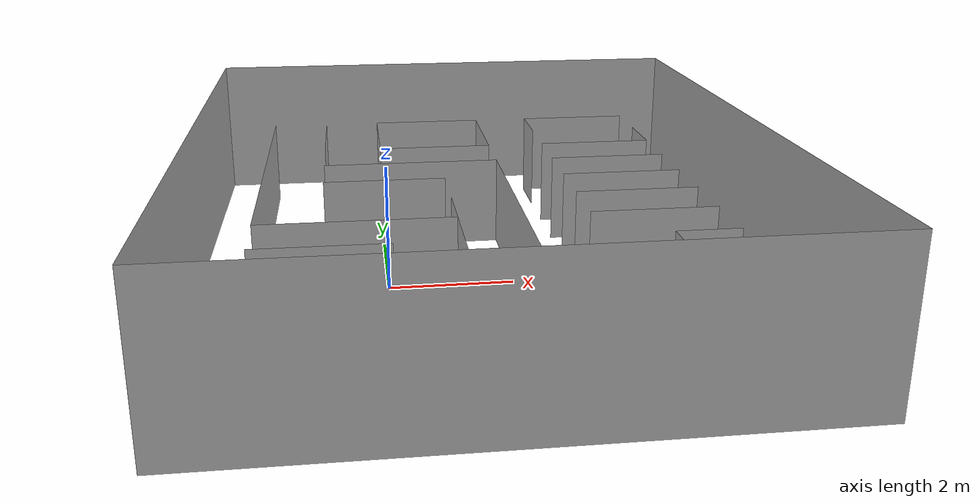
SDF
<?xml version='1.0'?>
<sdf version='1.7'>
  <model name='Pacturtle_v2'>
    <pose>1.5 0.5 0 0 -0 0</pose>
    <link name='Wall_1'>
      <collision name='Wall_1_Collision'>
        <geometry>
          <box>
            <size>2 0 1.5</size>
          </box>
        </geometry>
        <pose>0 0 0.75 0 -0 0</pose>
      </collision>
      <visual name='Wall_1_Visual'>
        <pose>0 0 0.75 0 -0 0</pose>
        <geometry>
          <box>
            <size>2 0 1.5</size>
          </box>
        </geometry>
        <material>
          <script>
            <uri>file://media/materials/scripts/gazebo.material</uri>
            <name>Gazebo/Grey</name>
          </script>
          <ambient>1 1 1 1</ambient>
        </material>
        <meta>
          <layer>0</layer>
        </meta>
      </visual>
      <pose>-1.5 0.5 0 0 -0 0</pose>
    </link>
    <link name='Wall_11'>
      <collision name='Wall_11_Collision'>
        <geometry>
          <box>
            <size>6 0 1.5</size>
          </box>
        </geometry>
        <pose>0 0 0.75 0 -0 0</pose>
      </collision>
      <visual name='Wall_11_Visual'>
        <pose>0 0 0.75 0 -0 0</pose>
        <geometry>
          <box>
            <size>6 0 1.5</size>
          </box>
        </geometry>
        <material>
          <script>
            <uri>file://media/materials/scripts/gazebo.material</uri>
            <name>Gazebo/Grey</name>
          </script>
          <ambient>1 1 1 1</ambient>
        </material>
        <meta>
          <layer>0</layer>
        </meta>
      </visual>
      <pose>-3.5 1.5 0 0 -0 1.5708</pose>
    </link>
    <link name='Wall_13'>
      <collision name='Wall_13_Collision'>
        <geometry>
          <box>
            <size>3 0 1.5</size>
          </box>
        </geometry>
        <pose>0 0 0.75 0 -0 0</pose>
      </collision>
      <visual name='Wall_13_Visual'>
        <pose>0 0 0.75 0 -0 0</pose>
        <geometry>
          <box>
            <size>3 0 1.5</size>
          </box>
        </geometry>
        <material>
          <script>
            <uri>file://media/materials/scripts/gazebo.material</uri>
            <name>Gazebo/Grey</name>
          </script>
          <ambient>1 1 1 1</ambient>
        </material>
        <meta>
          <layer>0</layer>
        </meta>
      </visual>
      <pose>-1 1.5 0 0 -0 0</pose>
    </link>
    <link name='Wall_16'>
      <collision name='Wall_16_Collision'>
        <geometry>
          <box>
            <size>5 0 1.5</size>
          </box>
        </geometry>
        <pose>0 0 0.75 0 -0 0</pose>
      </collision>
      <visual name='Wall_16_Visual'>
        <pose>0 0 0.75 0 -0 0</pose>
        <geometry>
          <box>
            <size>5 0 1.5</size>
          </box>
        </geometry>
        <material>
          <script>
            <uri>file://media/materials/scripts/gazebo.material</uri>
            <name>Gazebo/Grey</name>
          </script>
          <ambient>1 1 1 1</ambient>
        </material>
        <meta>
          <layer>0</layer>
        </meta>
      </visual>
      <pose>0.5 -1 0 0 -0 -1.5708</pose>
    </link>
    <link name='Wall_18'>
      <collision name='Wall_18_Collision'>
        <geometry>
          <box>
            <size>1 0 1.5</size>
          </box>
        </geometry>
        <pose>0 0 0.75 0 -0 0</pose>
      </collision>
      <visual name='Wall_18_Visual'>
        <pose>0 0 0.75 0 -0 0</pose>
        <geometry>
          <box>
            <size>1 0 1.5</size>
          </box>
        </geometry>
        <material>
          <script>
            <uri>file://media/materials/scripts/gazebo.material</uri>
            <name>Gazebo/Grey</name>
          </script>
          <ambient>1 1 1 1</ambient>
        </material>
        <meta>
          <layer>0</layer>
        </meta>
      </visual>
      <pose>1 -3.5 0 0 -0 0</pose>
    </link>
    <link name='Wall_20'>
      <collision name='Wall_20_Collision'>
        <geometry>
          <box>
            <size>3 0 1.5</size>
          </box>
        </geometry>
        <pose>0 0 0.75 0 -0 0</pose>
      </collision>
      <visual name='Wall_20_Visual'>
        <pose>0 0 0.75 0 -0 0</pose>
        <geometry>
          <box>
            <size>3 0 1.5</size>
          </box>
        </geometry>
        <material>
          <script>
            <uri>file://media/materials/scripts/gazebo.material</uri>
            <name>Gazebo/Grey</name>
          </script>
          <ambient>1 1 1 1</ambient>
        </material>
        <meta>
          <layer>0</layer>
        </meta>
      </visual>
      <pose>2 -4.5 0 0 -0 0</pose>
    </link>
    <link name='Wall_22'>
      <collision name='Wall_22_Collision'>
        <geometry>
          <box>
            <size>2 0 1.5</size>
          </box>
        </geometry>
        <pose>0 0 0.75 0 -0 0</pose>
      </collision>
      <visual name='Wall_22_Visual'>
        <pose>0 0 0.75 0 -0 0</pose>
        <geometry>
          <box>
            <size>2 0 1.5</size>
          </box>
        </geometry>
        <material>
          <script>
            <uri>file://media/materials/scripts/gazebo.material</uri>
            <name>Gazebo/Grey</name>
          </script>
          <ambient>1 1 1 1</ambient>
        </material>
        <meta>
          <layer>0</layer>
        </meta>
      </visual>
      <pose>2.5 -3.5 0 0 -0 1.5708</pose>
    </link>
    <link name='Wall_24'>
      <collision name='Wall_24_Collision'>
        <geometry>
          <box>
            <size>1 0 1.5</size>
          </box>
        </geometry>
        <pose>0 0 0.75 0 -0 0</pose>
      </collision>
      <visual name='Wall_24_Visual'>
        <pose>0 0 0.75 0 -0 0</pose>
        <geometry>
          <box>
            <size>1 0 1.5</size>
          </box>
        </geometry>
        <material>
          <script>
            <uri>file://media/materials/scripts/gazebo.material</uri>
            <name>Gazebo/Grey</name>
          </script>
          <ambient>1 1 1 1</ambient>
        </material>
        <meta>
          <layer>0</layer>
        </meta>
      </visual>
      <pose>3 -2.5 0 0 -0 0</pose>
    </link>
    <link name='Wall_26'>
      <collision name='Wall_26_Collision'>
        <geometry>
          <box>
            <size>1 0 1.5</size>
          </box>
        </geometry>
        <pose>0 0 0.75 0 -0 0</pose>
      </collision>
      <visual name='Wall_26_Visual'>
        <pose>0 0 0.75 0 -0 0</pose>
        <geometry>
          <box>
            <size>1 0 1.5</size>
          </box>
        </geometry>
        <material>
          <script>
            <uri>file://media/materials/scripts/gazebo.material</uri>
            <name>Gazebo/Grey</name>
          </script>
          <ambient>1 1 1 1</ambient>
        </material>
        <meta>
          <layer>0</layer>
        </meta>
      </visual>
      <pose>4 -3.5 0 0 -0 0</pose>
    </link>
    <link name='Wall_28'>
      <collision name='Wall_28_Collision'>
        <geometry>
          <box>
            <size>2 0 1.5</size>
          </box>
        </geometry>
        <pose>0 0 0.75 0 -0 0</pose>
      </collision>
      <visual name='Wall_28_Visual'>
        <pose>0 0 0.75 0 -0 0</pose>
        <geometry>
          <box>
            <size>2 0 1.5</size>
          </box>
        </geometry>
        <material>
          <script>
            <uri>file://media/materials/scripts/gazebo.material</uri>
            <name>Gazebo/Grey</name>
          </script>
          <ambient>1 1 1 1</ambient>
        </material>
        <meta>
          <layer>0</layer>
        </meta>
      </visual>
      <pose>-2.5 -2.5 0 0 -0 0</pose>
    </link>
    <link name='Wall_30'>
      <collision name='Wall_30_Collision'>
        <geometry>
          <box>
            <size>1 0 1.5</size>
          </box>
        </geometry>
        <pose>0 0 0.75 0 -0 0</pose>
      </collision>
      <visual name='Wall_30_Visual'>
        <pose>0 0 0.75 0 -0 0</pose>
        <geometry>
          <box>
            <size>1 0 1.5</size>
          </box>
        </geometry>
        <material>
          <script>
            <uri>file://media/materials/scripts/gazebo.material</uri>
            <name>Gazebo/Grey</name>
          </script>
          <ambient>1 1 1 1</ambient>
        </material>
        <meta>
          <layer>0</layer>
        </meta>
      </visual>
      <pose>-3 -3.5 0 0 -0 0</pose>
    </link>
    <link name='Wall_32'>
      <collision name='Wall_32_Collision'>
        <geometry>
          <box>
            <size>1 0 1.5</size>
          </box>
        </geometry>
        <pose>0 0 0.75 0 -0 0</pose>
      </collision>
      <visual name='Wall_32_Visual'>
        <pose>0 0 0.75 0 -0 0</pose>
        <geometry>
          <box>
            <size>1 0 1.5</size>
          </box>
        </geometry>
        <material>
          <script>
            <uri>file://media/materials/scripts/gazebo.material</uri>
            <name>Gazebo/Grey</name>
          </script>
          <ambient>1 1 1 1</ambient>
        </material>
        <meta>
          <layer>0</layer>
        </meta>
      </visual>
      <pose>-3.5 -4 0 0 -0 -1.5708</pose>
    </link>
    <link name='Wall_34'>
      <collision name='Wall_34_Collision'>
        <geometry>
          <box>
            <size>1 0 1.5</size>
          </box>
        </geometry>
        <pose>0 0 0.75 0 -0 0</pose>
      </collision>
      <visual name='Wall_34_Visual'>
        <pose>0 0 0.75 0 -0 0</pose>
        <geometry>
          <box>
            <size>1 0 1.5</size>
          </box>
        </geometry>
        <material>
          <script>
            <uri>file://media/materials/scripts/gazebo.material</uri>
            <name>Gazebo/Grey</name>
          </script>
          <ambient>1 1 1 1</ambient>
        </material>
        <meta>
          <layer>0</layer>
        </meta>
      </visual>
      <pose>-2.5 -5 0 0 -0 -1.5708</pose>
    </link>
    <link name='Wall_36'>
      <collision name='Wall_36_Collision'>
        <geometry>
          <box>
            <size>2 0 1.5</size>
          </box>
        </geometry>
        <pose>0 0 0.75 0 -0 0</pose>
      </collision>
      <visual name='Wall_36_Visual'>
        <pose>0 0 0.75 0 -0 0</pose>
        <geometry>
          <box>
            <size>2 0 1.5</size>
          </box>
        </geometry>
        <material>
          <script>
            <uri>file://media/materials/scripts/gazebo.material</uri>
            <name>Gazebo/Grey</name>
          </script>
          <ambient>1 1 1 1</ambient>
        </material>
        <meta>
          <layer>0</layer>
        </meta>
      </visual>
      <pose>-1.5 -4.5 0 0 -0 -1.5708</pose>
    </link>
    <link name='Wall_38'>
      <collision name='Wall_38_Collision'>
        <geometry>
          <box>
            <size>2 0 1.5</size>
          </box>
        </geometry>
        <pose>0 0 0.75 0 -0 0</pose>
      </collision>
      <visual name='Wall_38_Visual'>
        <pose>0 0 0.75 0 -0 0</pose>
        <geometry>
          <box>
            <size>2 0 1.5</size>
          </box>
        </geometry>
        <material>
          <script>
            <uri>file://media/materials/scripts/gazebo.material</uri>
            <name>Gazebo/Grey</name>
          </script>
          <ambient>1 1 1 1</ambient>
        </material>
        <meta>
          <layer>0</layer>
        </meta>
      </visual>
      <pose>2.5 -1.5 0 0 -0 0</pose>
    </link>
    <link name='Wall_40'>
      <collision name='Wall_40_Collision'>
        <geometry>
          <box>
            <size>2 0 1.5</size>
          </box>
        </geometry>
        <pose>0 0 0.75 0 -0 0</pose>
      </collision>
      <visual name='Wall_40_Visual'>
        <pose>0 0 0.75 0 -0 0</pose>
        <geometry>
          <box>
            <size>2 0 1.5</size>
          </box>
        </geometry>
        <material>
          <script>
            <uri>file://media/materials/scripts/gazebo.material</uri>
            <name>Gazebo/Grey</name>
          </script>
          <ambient>1 1 1 1</ambient>
        </material>
        <meta>
          <layer>0</layer>
        </meta>
      </visual>
      <pose>2.5 -0.5 0 0 -0 0</pose>
    </link>
    <link name='Wall_42'>
      <collision name='Wall_42_Collision'>
        <geometry>
          <box>
            <size>2 0 1.5</size>
          </box>
        </geometry>
        <pose>0 0 0.75 0 -0 0</pose>
      </collision>
      <visual name='Wall_42_Visual'>
        <pose>0 0 0.75 0 -0 0</pose>
        <geometry>
          <box>
            <size>2 0 1.5</size>
          </box>
        </geometry>
        <material>
          <script>
            <uri>file://media/materials/scripts/gazebo.material</uri>
            <name>Gazebo/Grey</name>
          </script>
          <ambient>1 1 1 1</ambient>
        </material>
        <meta>
          <layer>0</layer>
        </meta>
      </visual>
      <pose>2.5 0.5 0 0 -0 0</pose>
    </link>
    <link name='Wall_44'>
      <collision name='Wall_44_Collision'>
        <geometry>
          <box>
            <size>2 0 1.5</size>
          </box>
        </geometry>
        <pose>0 0 0.75 0 -0 0</pose>
      </collision>
      <visual name='Wall_44_Visual'>
        <pose>0 0 0.75 0 -0 0</pose>
        <geometry>
          <box>
            <size>2 0 1.5</size>
          </box>
        </geometry>
        <material>
          <script>
            <uri>file://media/materials/scripts/gazebo.material</uri>
            <name>Gazebo/Grey</name>
          </script>
          <ambient>1 1 1 1</ambient>
        </material>
        <meta>
          <layer>0</layer>
        </meta>
      </visual>
      <pose>2.5 1.5 0 0 -0 0</pose>
    </link>
    <link name='Wall_46'>
      <collision name='Wall_46_Collision'>
        <geometry>
          <box>
            <size>2 0 1.5</size>
          </box>
        </geometry>
        <pose>0 0 0.75 0 -0 0</pose>
      </collision>
      <visual name='Wall_46_Visual'>
        <pose>0 0 0.75 0 -0 0</pose>
        <geometry>
          <box>
            <size>2 0 1.5</size>
          </box>
        </geometry>
        <material>
          <script>
            <uri>file://media/materials/scripts/gazebo.material</uri>
            <name>Gazebo/Grey</name>
          </script>
          <ambient>1 1 1 1</ambient>
        </material>
        <meta>
          <layer>0</layer>
        </meta>
      </visual>
      <pose>2.5 2.5 0 0 -0 0</pose>
    </link>
    <link name='Wall_47'>
      <collision name='Wall_47_Collision'>
        <geometry>
          <box>
            <size>1 0 1.5</size>
          </box>
        </geometry>
        <pose>0 0 0.75 0 -0 0</pose>
      </collision>
      <visual name='Wall_47_Visual'>
        <pose>0 0 0.75 0 -0 0</pose>
        <geometry>
          <box>
            <size>1 0 1.5</size>
          </box>
        </geometry>
        <material>
          <script>
            <uri>file://media/materials/scripts/gazebo.material</uri>
            <name>Gazebo/Grey</name>
          </script>
          <ambient>1 1 1 1</ambient>
        </material>
        <meta>
          <layer>0</layer>
        </meta>
      </visual>
      <pose>3.5 3 0 0 -0 1.5708</pose>
    </link>
    <link name='Wall_49'>
      <collision name='Wall_49_Collision'>
        <geometry>
          <box>
            <size>1 0 1.5</size>
          </box>
        </geometry>
        <pose>0 0 0.75 0 -0 0</pose>
      </collision>
      <visual name='Wall_49_Visual'>
        <pose>0 0 0.75 0 -0 0</pose>
        <geometry>
          <box>
            <size>1 0 1.5</size>
          </box>
        </geometry>
        <material>
          <script>
            <uri>file://media/materials/scripts/gazebo.material</uri>
            <name>Gazebo/Grey</name>
          </script>
          <ambient>1 1 1 1</ambient>
        </material>
        <meta>
          <layer>0</layer>
        </meta>
      </visual>
      <pose>1.5 4 0 0 -0 1.5708</pose>
    </link>
    <link name='Wall_5'>
      <collision name='Wall_5_Collision'>
        <geometry>
          <box>
            <size>3.85 0 1.5</size>
          </box>
        </geometry>
        <pose>0 0 0.75 0 -0 0</pose>
      </collision>
      <visual name='Wall_5_Visual'>
        <pose>0 0 0.75 0 -0 0</pose>
        <geometry>
          <box>
            <size>3.85 0 1.5</size>
          </box>
        </geometry>
        <material>
          <script>
            <uri>file://media/materials/scripts/gazebo.material</uri>
            <name>Gazebo/Grey</name>
          </script>
          <ambient>1 1 1 1</ambient>
        </material>
        <meta>
          <layer>0</layer>
        </meta>
      </visual>
      <pose>-0.5 -2.425 0 0 -0 -1.5708</pose>
    </link>
    <link name='Wall_50'>
      <collision name='Wall_50_Collision'>
        <geometry>
          <box>
            <size>2 0 1.5</size>
          </box>
        </geometry>
        <pose>0 0 0.75 0 -0 0</pose>
      </collision>
      <visual name='Wall_50_Visual'>
        <pose>0 0 0.75 0 -0 0</pose>
        <geometry>
          <box>
            <size>2 0 1.5</size>
          </box>
        </geometry>
        <material>
          <script>
            <uri>file://media/materials/scripts/gazebo.material</uri>
            <name>Gazebo/Grey</name>
          </script>
          <ambient>1 1 1 1</ambient>
        </material>
        <meta>
          <layer>0</layer>
        </meta>
      </visual>
      <pose>2.5 4.5 0 0 -0 0</pose>
    </link>
    <link name='Wall_52'>
      <collision name='Wall_52_Collision'>
        <geometry>
          <box>
            <size>2 0 1.5</size>
          </box>
        </geometry>
        <pose>0 0 0.75 0 -0 0</pose>
      </collision>
      <visual name='Wall_52_Visual'>
        <pose>0 0 0.75 0 -0 0</pose>
        <geometry>
          <box>
            <size>2 0 1.5</size>
          </box>
        </geometry>
        <material>
          <script>
            <uri>file://media/materials/scripts/gazebo.material</uri>
            <name>Gazebo/Grey</name>
          </script>
          <ambient>1 1 1 1</ambient>
        </material>
        <meta>
          <layer>0</layer>
        </meta>
      </visual>
      <pose>0.5 3.5 0 0 -0 -1.5708</pose>
    </link>
    <link name='Wall_53'>
      <collision name='Wall_53_Collision'>
        <geometry>
          <box>
            <size>2 0 1.5</size>
          </box>
        </geometry>
        <pose>0 0 0.75 0 -0 0</pose>
      </collision>
      <visual name='Wall_53_Visual'>
        <pose>0 0 0.75 0 -0 0</pose>
        <geometry>
          <box>
            <size>2 0 1.5</size>
          </box>
        </geometry>
        <material>
          <script>
            <uri>file://media/materials/scripts/gazebo.material</uri>
            <name>Gazebo/Grey</name>
          </script>
          <ambient>1 1 1 1</ambient>
        </material>
        <meta>
          <layer>0</layer>
        </meta>
      </visual>
      <pose>-0.5 2.5 0 0 -0 3.14159</pose>
    </link>
    <link name='Wall_54'>
      <collision name='Wall_54_Collision'>
        <geometry>
          <box>
            <size>2 0 1.5</size>
          </box>
        </geometry>
        <pose>0 0 0.75 0 -0 0</pose>
      </collision>
      <visual name='Wall_54_Visual'>
        <pose>0 0 0.75 0 -0 0</pose>
        <geometry>
          <box>
            <size>2 0 1.5</size>
          </box>
        </geometry>
        <material>
          <script>
            <uri>file://media/materials/scripts/gazebo.material</uri>
            <name>Gazebo/Grey</name>
          </script>
          <ambient>1 1 1 1</ambient>
        </material>
        <meta>
          <layer>0</layer>
        </meta>
      </visual>
      <pose>-1.5 3.5 0 0 -0 1.5708</pose>
    </link>
    <link name='Wall_55'>
      <collision name='Wall_55_Collision'>
        <geometry>
          <box>
            <size>2 0 1.5</size>
          </box>
        </geometry>
        <pose>0 0 0.75 0 -0 0</pose>
      </collision>
      <visual name='Wall_55_Visual'>
        <pose>0 0 0.75 0 -0 0</pose>
        <geometry>
          <box>
            <size>2 0 1.5</size>
          </box>
        </geometry>
        <material>
          <script>
            <uri>file://media/materials/scripts/gazebo.material</uri>
            <name>Gazebo/Grey</name>
          </script>
          <ambient>1 1 1 1</ambient>
        </material>
        <meta>
          <layer>0</layer>
        </meta>
      </visual>
      <pose>-0.5 4.5 0 0 -0 0</pose>
    </link>
    <link name='Wall_57'>
      <collision name='Wall_57_Collision'>
        <geometry>
          <box>
            <size>2 0 1.5</size>
          </box>
        </geometry>
        <pose>0 0 0.75 0 -0 0</pose>
      </collision>
      <visual name='Wall_57_Visual'>
        <pose>0 0 0.75 0 -0 0</pose>
        <geometry>
          <box>
            <size>2 0 1.5</size>
          </box>
        </geometry>
        <material>
          <script>
            <uri>file://media/materials/scripts/gazebo.material</uri>
            <name>Gazebo/Grey</name>
          </script>
          <ambient>1 1 1 1</ambient>
        </material>
        <meta>
          <layer>0</layer>
        </meta>
      </visual>
      <pose>-2.5 3.5 0 0 -0 -1.5708</pose>
    </link>
    <link name='Wall_59'>
      <collision name='Wall_59_Collision'>
        <geometry>
          <box>
            <size>9 0 2.5</size>
          </box>
        </geometry>
        <pose>0 0 1.25 0 -0 0</pose>
      </collision>
      <visual name='Wall_59_Visual'>
        <pose>0 0 1.25 0 -0 0</pose>
        <geometry>
          <box>
            <size>9 0 2.5</size>
          </box>
        </geometry>
        <material>
          <script>
            <uri>file://media/materials/scripts/gazebo.material</uri>
            <name>Gazebo/Grey</name>
          </script>
          <ambient>1 1 1 1</ambient>
        </material>
        <meta>
          <layer>0</layer>
        </meta>
      </visual>
      <pose>0 -5.5 0 0 -0 0</pose>
    </link>
    <link name='Wall_61'>
      <collision name='Wall_61_Collision'>
        <geometry>
          <box>
            <size>11 0 2.5</size>
          </box>
        </geometry>
        <pose>0 0 1.25 0 -0 0</pose>
      </collision>
      <visual name='Wall_61_Visual'>
        <pose>0 0 1.25 0 -0 0</pose>
        <geometry>
          <box>
            <size>11 0 2.5</size>
          </box>
        </geometry>
        <material>
          <script>
            <uri>file://media/materials/scripts/gazebo.material</uri>
            <name>Gazebo/Grey</name>
          </script>
          <ambient>1 1 1 1</ambient>
        </material>
        <meta>
          <layer>0</layer>
        </meta>
      </visual>
      <pose>-4.5 0 0 0 -0 1.5708</pose>
    </link>
    <link name='Wall_62'>
      <collision name='Wall_62_Collision'>
        <geometry>
          <box>
            <size>9 0 2.5</size>
          </box>
        </geometry>
        <pose>0 0 1.25 0 -0 0</pose>
      </collision>
      <visual name='Wall_62_Visual'>
        <pose>0 0 1.25 0 -0 0</pose>
        <geometry>
          <box>
            <size>9 0 2.5</size>
          </box>
        </geometry>
        <material>
          <script>
            <uri>file://media/materials/scripts/gazebo.material</uri>
            <name>Gazebo/Grey</name>
          </script>
          <ambient>1 1 1 1</ambient>
        </material>
        <meta>
          <layer>0</layer>
        </meta>
      </visual>
      <pose>0 5.5 0 0 -0 0</pose>
    </link>
    <link name='Wall_63'>
      <collision name='Wall_63_Collision'>
        <geometry>
          <box>
            <size>11 0 2.5</size>
          </box>
        </geometry>
        <pose>0 0 1.25 0 -0 0</pose>
      </collision>
      <visual name='Wall_63_Visual'>
        <pose>0 0 1.25 0 -0 0</pose>
        <geometry>
          <box>
            <size>11 0 2.5</size>
          </box>
        </geometry>
        <material>
          <script>
            <uri>file://media/materials/scripts/gazebo.material</uri>
            <name>Gazebo/Grey</name>
          </script>
          <ambient>1 1 1 1</ambient>
        </material>
        <meta>
          <layer>0</layer>
        </meta>
      </visual>
      <pose>4.5 0 0 0 -0 -1.5708</pose>
    </link>
    <link name='Wall_7'>
      <collision name='Wall_7_Collision'>
        <geometry>
          <box>
            <size>0.15 0 1.5</size>
          </box>
        </geometry>
        <pose>0 0 0.75 0 -0 0</pose>
      </collision>
      <visual name='Wall_7_Visual'>
        <pose>0 0 0.75 0 -0 0</pose>
        <geometry>
          <box>
            <size>0.15 0 1.5</size>
          </box>
        </geometry>
        <material>
          <script>
            <uri>file://media/materials/scripts/gazebo.material</uri>
            <name>Gazebo/Grey</name>
          </script>
          <ambient>1 1 1 1</ambient>
        </material>
        <meta>
          <layer>0</layer>
        </meta>
      </visual>
      <pose>-0.5 -4.425 0 0 -0 -1.5708</pose>
    </link>
    <link name='Wall_9'>
      <collision name='Wall_9_Collision'>
        <geometry>
          <box>
            <size>3 0 1.5</size>
          </box>
        </geometry>
        <pose>0 0 0.75 0 -0 0</pose>
      </collision>
      <visual name='Wall_9_Visual'>
        <pose>0 0 0.75 0 -0 0</pose>
        <geometry>
          <box>
            <size>3 0 1.5</size>
          </box>
        </geometry>
        <material>
          <script>
            <uri>file://media/materials/scripts/gazebo.material</uri>
            <name>Gazebo/Grey</name>
          </script>
          <ambient>1 1 1 1</ambient>
        </material>
        <meta>
          <layer>0</layer>
        </meta>
      </visual>
      <pose>-2 -1.5 0 0 -0 3.14159</pose>
    </link>
    <static>1</static>
  </model>
</sdf>
